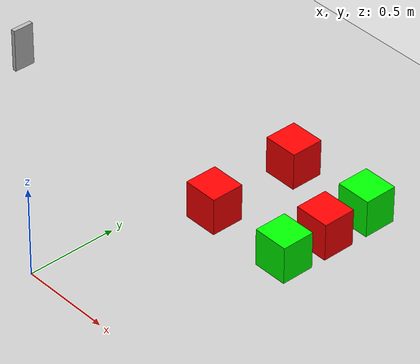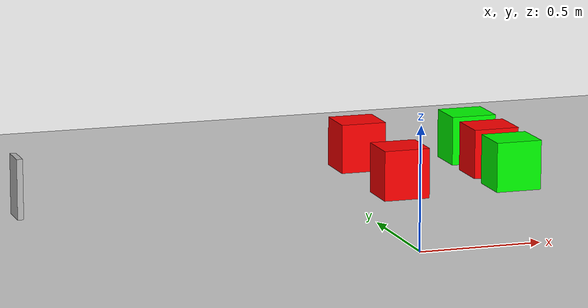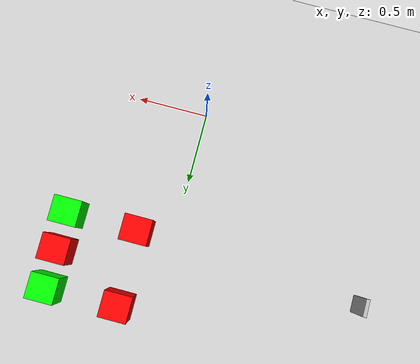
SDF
<sdf version='1.7'>
  <world name='default'>
    <scene>
      <ambient>0.8 0.8 0.8 1</ambient>
      <shadows>0</shadows>
      <grid>0</grid>
      <background>0.7 0.7 0.7 1</background>
    </scene>
    <model name='course'>
      <static>true</static>
      <link name='course_link'>
        <collision name='course_collision'>
          <geometry>
            <plane>
              <normal>0 0 1</normal>
              <size>4 4</size>
            </plane>
          </geometry>
          <surface>
            <friction>
              <ode>
                <mu>100</mu>
                <mu2>50</mu2>
              </ode>
              <torsional>
                <ode/>
              </torsional>
            </friction>
            <contact>
              <ode/>
            </contact>
            <bounce/>
          </surface>
          <max_contacts>10</max_contacts>
        </collision>
        <visual name='course_visual'>
          <cast_shadows>0</cast_shadows>
          <geometry>
            <plane>
              <normal>0 0 1</normal>
              <size>4 6.4</size>
            </plane>
          </geometry>
          <material>
            <script>
              <uri>model://turtlebot3_autorace_2020/course/materials/scripts</uri>
              <uri>model://turtlebot3_autorace_2020/course/materials/textures</uri>
              <name>course</name>
            </script>
          </material>
        </visual>
        <self_collide>0</self_collide>
        <enable_wind>0</enable_wind>
        <kinematic>0</kinematic>
      </link>
      <pose>0 0 0 0 0 -3.14</pose>
    </model>
    <model name='traffic_stop'>
      <static>true</static>
      <link name='box'>
        <pose>0 0 0 0 -0 0</pose>
        <collision name='collision'>
          <geometry>
            <box>
              <size>0.12 0.025 0.25</size>
            </box>
          </geometry>
          <max_contacts>10</max_contacts>
          <surface>
            <contact>
              <ode/>
            </contact>
            <bounce/>
            <friction>
              <torsional>
                <ode/>
              </torsional>
              <ode/>
            </friction>
          </surface>
        </collision>
        <visual name='visual'>
          <geometry>
            <box>
              <size>0.12 0.025 0.25</size>
            </box>
          </geometry>
          <material>
            <script>
              <uri>model://turtlebot3_autorace_2020/traffic_stop/materials/scripts</uri>
              <uri>model://turtlebot3_autorace_2020/traffic_stop/materials/textures</uri>
              <name>traffic_stop</name>
            </script>
          </material>
        </visual>
        <self_collide>0</self_collide>
        <enable_wind>0</enable_wind>
        <kinematic>0</kinematic>
      </link>
      <pose>-1.35 1.04 0.125 0 -0 -1.57</pose>
    </model>
    <light name='sun' type='directional'>
      <cast_shadows>1</cast_shadows>
      <pose>0 0 10 0 -0 0</pose>
      <diffuse>0.8 0.8 0.8 1</diffuse>
      <specular>0.1 0.1 0.1 1</specular>
      <attenuation>
        <range>1000</range>
        <constant>0.9</constant>
        <linear>0.01</linear>
        <quadratic>0.001</quadratic>
      </attenuation>
      <direction>-0.5 0.5 -1</direction>
      <spot>
        <inner_angle>0</inner_angle>
        <outer_angle>0</outer_angle>
        <falloff>0</falloff>
      </spot>
    </light>
    <model name='ground2'>
      <pose>0 0 -0.1 0 -0 0</pose>
      <static>true</static>
      <link name='ground'>
        <collision name='ground_coll'>
          <geometry>
            <box>
              <size>8 8 0.01</size>
            </box>
          </geometry>
          <surface>
            <contact>
              <ode/>
            </contact>
            <bounce/>
            <friction>
              <torsional>
                <ode/>
              </torsional>
              <ode/>
            </friction>
          </surface>
          <max_contacts>10</max_contacts>
        </collision>
        <visual name='ground_vis'>
          <geometry>
            <box>
              <size>10 10 0.01</size>
            </box>
          </geometry>
          <material>
            <script>
              <uri>file://media/materials/scripts/gazebo.material</uri>
              <name>Gazebo/FlatBlack</name>
            </script>
          </material>
        </visual>
        <self_collide>0</self_collide>
        <kinematic>0</kinematic>
        <gravity>1</gravity>
        <enable_wind>0</enable_wind>
      </link>
    </model>
    <gravity>0 0 -9.8</gravity>
    <magnetic_field>6e-06 2.3e-05 -4.2e-05</magnetic_field>
    <atmosphere type='adiabatic'/>
    <physics name='default_physics' default='0' type='ode'>
      <max_step_size>0.001</max_step_size>
      <real_time_factor>1</real_time_factor>
      <real_time_update_rate>1000</real_time_update_rate>
    </physics>
    <spherical_coordinates>
      <surface_model>EARTH_WGS84</surface_model>
      <latitude_deg>0</latitude_deg>
      <longitude_deg>0</longitude_deg>
      <elevation>0</elevation>
      <heading_deg>0</heading_deg>
    </spherical_coordinates>
    <light name='user_point_light_1' type='point'>
      <pose>-1.64815 0.604519 1 0 -0 0</pose>
      <diffuse>0.5 0.5 0.5 1</diffuse>
      <specular>0.1 0.1 0.1 1</specular>
      <attenuation>
        <range>20</range>
        <constant>0.5</constant>
        <linear>0.01</linear>
        <quadratic>0.001</quadratic>
      </attenuation>
      <cast_shadows>0</cast_shadows>
      <direction>0 0 -1</direction>
      <spot>
        <inner_angle>0</inner_angle>
        <outer_angle>0</outer_angle>
        <falloff>0</falloff>
      </spot>
    </light>
    <light name='user_point_light_2' type='point'>
      <pose>1.63854 1.69565 1 0 -0 0</pose>
      <diffuse>0.5 0.5 0.5 1</diffuse>
      <specular>0.1 0.1 0.1 1</specular>
      <attenuation>
        <range>20</range>
        <constant>0.5</constant>
        <linear>0.01</linear>
        <quadratic>0.001</quadratic>
      </attenuation>
      <cast_shadows>0</cast_shadows>
      <direction>0 0 -1</direction>
      <spot>
        <inner_angle>0</inner_angle>
        <outer_angle>0</outer_angle>
        <falloff>0</falloff>
      </spot>
    </light>
    <light name='user_point_light_3' type='point'>
      <pose>0.42 -3.31 1 0 -0 0</pose>
      <diffuse>0.5 0.5 0.5 1</diffuse>
      <specular>0.1 0.1 0.1 1</specular>
      <attenuation>
        <range>20</range>
        <constant>0.5</constant>
        <linear>0.01</linear>
        <quadratic>0.001</quadratic>
      </attenuation>
      <cast_shadows>0</cast_shadows>
      <direction>0 0 -1</direction>
      <spot>
        <inner_angle>0</inner_angle>
        <outer_angle>0</outer_angle>
        <falloff>0</falloff>
      </spot>
    </light>
    <gui fullscreen='0'>
      <camera name='user_camera'>
        <pose>1.72487 6.03336 3.99348 0 0.637795 -1.597</pose>
        <view_controller>orbit</view_controller>
        <projection_type>perspective</projection_type>
      </camera>
    </gui>
    <audio>
      <device>default</device>
    </audio>
    <wind/>
    <model name='barrier_3_clone'>
      <link name='link'>
        <inertial>
          <mass>1</mass>
          <inertia>
            <ixx>0.166667</ixx>
            <ixy>0</ixy>
            <ixz>0</ixz>
            <iyy>0.166667</iyy>
            <iyz>0</iyz>
            <izz>0.166667</izz>
          </inertia>
          <pose>0 0 0 0 -0 0</pose>
        </inertial>
        <self_collide>0</self_collide>
        <enable_wind>0</enable_wind>
        <kinematic>0</kinematic>
        <pose>0 0 0 0 -0 0</pose>
        <gravity>1</gravity>
        <visual name='visual'>
          <geometry>
            <box>
              <size>0.195953 0.182544 0.210185</size>
            </box>
          </geometry>
          <material>
            <script>
              <name>Gazebo/Grey</name>
              <uri>file://media/materials/scripts/gazebo.material</uri>
            </script>
            <shader type='pixel'>
              <normal_map>__default__</normal_map>
            </shader>
            <ambient>1 0 0 1</ambient>
            <diffuse>1 0 0 1</diffuse>
            <specular>0.01 0.01 0.01 1</specular>
            <emissive>0 0 0 1</emissive>
          </material>
          <pose>0 0 0 0 -0 0</pose>
          <transparency>0</transparency>
          <cast_shadows>1</cast_shadows>
        </visual>
        <collision name='collision'>
          <laser_retro>0</laser_retro>
          <max_contacts>10</max_contacts>
          <pose>0 0 0 0 -0 0</pose>
          <geometry>
            <box>
              <size>0.195953 0.182544 0.210185</size>
            </box>
          </geometry>
          <surface>
            <friction>
              <ode>
                <mu>1</mu>
                <mu2>1</mu2>
                <fdir1>0 0 0</fdir1>
                <slip1>0</slip1>
                <slip2>0</slip2>
              </ode>
              <torsional>
                <coefficient>1</coefficient>
                <patch_radius>0</patch_radius>
                <surface_radius>0</surface_radius>
                <use_patch_radius>1</use_patch_radius>
                <ode>
                  <slip>0</slip>
                </ode>
              </torsional>
            </friction>
            <bounce>
              <restitution_coefficient>0</restitution_coefficient>
              <threshold>1e+06</threshold>
            </bounce>
            <contact>
              <collide_without_contact>0</collide_without_contact>
              <collide_without_contact_bitmask>1</collide_without_contact_bitmask>
              <collide_bitmask>1</collide_bitmask>
              <ode>
                <soft_cfm>0</soft_cfm>
                <soft_erp>0.2</soft_erp>
                <kp>1e+13</kp>
                <kd>1</kd>
                <max_vel>0.01</max_vel>
                <min_depth>0</min_depth>
              </ode>
              <bullet>
                <split_impulse>1</split_impulse>
                <split_impulse_penetration_threshold>-0.01</split_impulse_penetration_threshold>
                <soft_cfm>0</soft_cfm>
                <soft_erp>0.2</soft_erp>
                <kp>1e+13</kp>
                <kd>1</kd>
              </bullet>
            </contact>
          </surface>
        </collision>
      </link>
      <static>1</static>
      <allow_auto_disable>1</allow_auto_disable>
      <pose>0.2505 0.9321 0.1033 0 0 0</pose>
    </model>
    <model name='barrier_3_clone_clone'>
      <link name='link'>
        <inertial>
          <mass>1</mass>
          <inertia>
            <ixx>0.166667</ixx>
            <ixy>0</ixy>
            <ixz>0</ixz>
            <iyy>0.166667</iyy>
            <iyz>0</iyz>
            <izz>0.166667</izz>
          </inertia>
          <pose>0 0 0 0 -0 0</pose>
        </inertial>
        <self_collide>0</self_collide>
        <enable_wind>0</enable_wind>
        <kinematic>0</kinematic>
        <pose>0 0 0 0 -0 0</pose>
        <gravity>1</gravity>
        <visual name='visual'>
          <geometry>
            <box>
              <size>0.195953 0.182544 0.210185</size>
            </box>
          </geometry>
          <material>
            <script>
              <name>Gazebo/Grey</name>
              <uri>file://media/materials/scripts/gazebo.material</uri>
            </script>
            <shader type='pixel'>
              <normal_map>__default__</normal_map>
            </shader>
            <ambient>1 0 0 1</ambient>
            <diffuse>1 0 0 1</diffuse>
            <specular>0.01 0.01 0.01 1</specular>
            <emissive>0 0 0 1</emissive>
          </material>
          <pose>0 0 0 0 -0 0</pose>
          <transparency>0</transparency>
          <cast_shadows>1</cast_shadows>
        </visual>
        <collision name='collision'>
          <laser_retro>0</laser_retro>
          <max_contacts>10</max_contacts>
          <pose>0 0 0 0 -0 0</pose>
          <geometry>
            <box>
              <size>0.195953 0.182544 0.210185</size>
            </box>
          </geometry>
          <surface>
            <friction>
              <ode>
                <mu>1</mu>
                <mu2>1</mu2>
                <fdir1>0 0 0</fdir1>
                <slip1>0</slip1>
                <slip2>0</slip2>
              </ode>
              <torsional>
                <coefficient>1</coefficient>
                <patch_radius>0</patch_radius>
                <surface_radius>0</surface_radius>
                <use_patch_radius>1</use_patch_radius>
                <ode>
                  <slip>0</slip>
                </ode>
              </torsional>
            </friction>
            <bounce>
              <restitution_coefficient>0</restitution_coefficient>
              <threshold>1e+06</threshold>
            </bounce>
            <contact>
              <collide_without_contact>0</collide_without_contact>
              <collide_without_contact_bitmask>1</collide_without_contact_bitmask>
              <collide_bitmask>1</collide_bitmask>
              <ode>
                <soft_cfm>0</soft_cfm>
                <soft_erp>0.2</soft_erp>
                <kp>1e+13</kp>
                <kd>1</kd>
                <max_vel>0.01</max_vel>
                <min_depth>0</min_depth>
              </ode>
              <bullet>
                <split_impulse>1</split_impulse>
                <split_impulse_penetration_threshold>-0.01</split_impulse_penetration_threshold>
                <soft_cfm>0</soft_cfm>
                <soft_erp>0.2</soft_erp>
                <kp>1e+13</kp>
                <kd>1</kd>
              </bullet>
            </contact>
          </surface>
        </collision>
      </link>
      <static>1</static>
      <allow_auto_disable>1</allow_auto_disable>
      <pose>0.244482 1.46033 0.105092 -4e-06 2e-06 3.4e-05</pose>
    </model>
    <model name='barrier_3_clone_clone_0'>
      <link name='link'>
        <inertial>
          <mass>1</mass>
          <inertia>
            <ixx>0.166667</ixx>
            <ixy>0</ixy>
            <ixz>0</ixz>
            <iyy>0.166667</iyy>
            <iyz>0</iyz>
            <izz>0.166667</izz>
          </inertia>
          <pose>0 0 0 0 -0 0</pose>
        </inertial>
        <self_collide>0</self_collide>
        <enable_wind>0</enable_wind>
        <kinematic>0</kinematic>
        <pose>0 0 0 0 -0 0</pose>
        <gravity>1</gravity>
        <visual name='visual'>
          <geometry>
            <box>
              <size>0.195953 0.182544 0.210185</size>
            </box>
          </geometry>
          <material>
            <script>
              <name>Gazebo/Grey</name>
              <uri>file://media/materials/scripts/gazebo.material</uri>
            </script>
            <shader type='pixel'>
              <normal_map>__default__</normal_map>
            </shader>
            <ambient>0 1 0 1</ambient>
            <diffuse>0 1 0 1</diffuse>
            <specular>0.01 0.01 0.01 1</specular>
            <emissive>0 0 0 1</emissive>
          </material>
          <pose>0 0 0 0 -0 0</pose>
          <transparency>0</transparency>
          <cast_shadows>1</cast_shadows>
        </visual>
        <collision name='collision'>
          <laser_retro>0</laser_retro>
          <max_contacts>10</max_contacts>
          <pose>0 0 0 0 -0 0</pose>
          <geometry>
            <box>
              <size>0.195953 0.182544 0.210185</size>
            </box>
          </geometry>
          <surface>
            <friction>
              <ode>
                <mu>1</mu>
                <mu2>1</mu2>
                <fdir1>0 0 0</fdir1>
                <slip1>0</slip1>
                <slip2>0</slip2>
              </ode>
              <torsional>
                <coefficient>1</coefficient>
                <patch_radius>0</patch_radius>
                <surface_radius>0</surface_radius>
                <use_patch_radius>1</use_patch_radius>
                <ode>
                  <slip>0</slip>
                </ode>
              </torsional>
            </friction>
            <bounce>
              <restitution_coefficient>0</restitution_coefficient>
              <threshold>1e+06</threshold>
            </bounce>
            <contact>
              <collide_without_contact>0</collide_without_contact>
              <collide_without_contact_bitmask>1</collide_without_contact_bitmask>
              <collide_bitmask>1</collide_bitmask>
              <ode>
                <soft_cfm>0</soft_cfm>
                <soft_erp>0.2</soft_erp>
                <kp>1e+13</kp>
                <kd>1</kd>
                <max_vel>0.01</max_vel>
                <min_depth>0</min_depth>
              </ode>
              <bullet>
                <split_impulse>1</split_impulse>
                <split_impulse_penetration_threshold>-0.01</split_impulse_penetration_threshold>
                <soft_cfm>0</soft_cfm>
                <soft_erp>0.2</soft_erp>
                <kp>1e+13</kp>
                <kd>1</kd>
              </bullet>
            </contact>
          </surface>
        </collision>
      </link>
      <static>1</static>
      <allow_auto_disable>1</allow_auto_disable>
      <pose>0.744904 0.931438 0.105092 -4e-06 2e-06 3.4e-05</pose>
    </model>
    <model name='barrier_3_clone_clone_1'>
      <link name='link'>
        <inertial>
          <mass>1</mass>
          <inertia>
            <ixx>0.166667</ixx>
            <ixy>0</ixy>
            <ixz>0</ixz>
            <iyy>0.166667</iyy>
            <iyz>0</iyz>
            <izz>0.166667</izz>
          </inertia>
          <pose>0 0 0 0 -0 0</pose>
        </inertial>
        <self_collide>0</self_collide>
        <enable_wind>0</enable_wind>
        <kinematic>0</kinematic>
        <pose>0 0 0 0 -0 0</pose>
        <gravity>1</gravity>
        <visual name='visual'>
          <geometry>
            <box>
              <size>0.195953 0.182544 0.210185</size>
            </box>
          </geometry>
          <material>
            <script>
              <name>Gazebo/Grey</name>
              <uri>file://media/materials/scripts/gazebo.material</uri>
            </script>
            <shader type='pixel'>
              <normal_map>__default__</normal_map>
            </shader>
            <ambient>1 0 0 1</ambient>
            <diffuse>1 0 0 1</diffuse>
            <specular>0.01 0.01 0.01 1</specular>
            <emissive>0 0 0 1</emissive>
          </material>
          <pose>0 0 0 0 -0 0</pose>
          <transparency>0</transparency>
          <cast_shadows>1</cast_shadows>
        </visual>
        <collision name='collision'>
          <laser_retro>0</laser_retro>
          <max_contacts>10</max_contacts>
          <pose>0 0 0 0 -0 0</pose>
          <geometry>
            <box>
              <size>0.195953 0.182544 0.210185</size>
            </box>
          </geometry>
          <surface>
            <friction>
              <ode>
                <mu>1</mu>
                <mu2>1</mu2>
                <fdir1>0 0 0</fdir1>
                <slip1>0</slip1>
                <slip2>0</slip2>
              </ode>
              <torsional>
                <coefficient>1</coefficient>
                <patch_radius>0</patch_radius>
                <surface_radius>0</surface_radius>
                <use_patch_radius>1</use_patch_radius>
                <ode>
                  <slip>0</slip>
                </ode>
              </torsional>
            </friction>
            <bounce>
              <restitution_coefficient>0</restitution_coefficient>
              <threshold>1e+06</threshold>
            </bounce>
            <contact>
              <collide_without_contact>0</collide_without_contact>
              <collide_without_contact_bitmask>1</collide_without_contact_bitmask>
              <collide_bitmask>1</collide_bitmask>
              <ode>
                <soft_cfm>0</soft_cfm>
                <soft_erp>0.2</soft_erp>
                <kp>1e+13</kp>
                <kd>1</kd>
                <max_vel>0.01</max_vel>
                <min_depth>0</min_depth>
              </ode>
              <bullet>
                <split_impulse>1</split_impulse>
                <split_impulse_penetration_threshold>-0.01</split_impulse_penetration_threshold>
                <soft_cfm>0</soft_cfm>
                <soft_erp>0.2</soft_erp>
                <kp>1e+13</kp>
                <kd>1</kd>
              </bullet>
            </contact>
          </surface>
        </collision>
      </link>
      <static>1</static>
      <allow_auto_disable>1</allow_auto_disable>
      <pose>0.746829 1.19557 0.105092 4e-06 2e-06 3.3e-05</pose>
    </model>
    <model name='barrier_3_clone_clone_2'>
      <link name='link'>
        <inertial>
          <mass>1</mass>
          <inertia>
            <ixx>0.166667</ixx>
            <ixy>0</ixy>
            <ixz>0</ixz>
            <iyy>0.166667</iyy>
            <iyz>0</iyz>
            <izz>0.166667</izz>
          </inertia>
          <pose>0 0 0 0 -0 0</pose>
        </inertial>
        <self_collide>0</self_collide>
        <enable_wind>0</enable_wind>
        <kinematic>0</kinematic>
        <pose>0 0 0 0 -0 0</pose>
        <gravity>1</gravity>
        <visual name='visual'>
          <geometry>
            <box>
              <size>0.195953 0.182544 0.210185</size>
            </box>
          </geometry>
          <material>
            <script>
              <name>Gazebo/Grey</name>
              <uri>file://media/materials/scripts/gazebo.material</uri>
            </script>
            <shader type='pixel'>
              <normal_map>__default__</normal_map>
            </shader>
            <ambient>0 1 0 1</ambient>
            <diffuse>0 1 0 1</diffuse>
            <specular>0.01 0.01 0.01 1</specular>
            <emissive>0 0 0 1</emissive>
          </material>
          <pose>0 0 0 0 -0 0</pose>
          <transparency>0</transparency>
          <cast_shadows>1</cast_shadows>
        </visual>
        <collision name='collision'>
          <laser_retro>0</laser_retro>
          <max_contacts>10</max_contacts>
          <pose>0 0 0 0 -0 0</pose>
          <geometry>
            <box>
              <size>0.195953 0.182544 0.210185</size>
            </box>
          </geometry>
          <surface>
            <friction>
              <ode>
                <mu>1</mu>
                <mu2>1</mu2>
                <fdir1>0 0 0</fdir1>
                <slip1>0</slip1>
                <slip2>0</slip2>
              </ode>
              <torsional>
                <coefficient>1</coefficient>
                <patch_radius>0</patch_radius>
                <surface_radius>0</surface_radius>
                <use_patch_radius>1</use_patch_radius>
                <ode>
                  <slip>0</slip>
                </ode>
              </torsional>
            </friction>
            <bounce>
              <restitution_coefficient>0</restitution_coefficient>
              <threshold>1e+06</threshold>
            </bounce>
            <contact>
              <collide_without_contact>0</collide_without_contact>
              <collide_without_contact_bitmask>1</collide_without_contact_bitmask>
              <collide_bitmask>1</collide_bitmask>
              <ode>
                <soft_cfm>0</soft_cfm>
                <soft_erp>0.2</soft_erp>
                <kp>1e+13</kp>
                <kd>1</kd>
                <max_vel>0.01</max_vel>
                <min_depth>0</min_depth>
              </ode>
              <bullet>
                <split_impulse>1</split_impulse>
                <split_impulse_penetration_threshold>-0.01</split_impulse_penetration_threshold>
                <soft_cfm>0</soft_cfm>
                <soft_erp>0.2</soft_erp>
                <kp>1e+13</kp>
                <kd>1</kd>
              </bullet>
            </contact>
          </surface>
        </collision>
      </link>
      <static>1</static>
      <allow_auto_disable>1</allow_auto_disable>
      <pose>0.748582 1.46722 0.105093 2e-06 3e-06 3.3e-05</pose>
    </model>
  </world>
</sdf>
